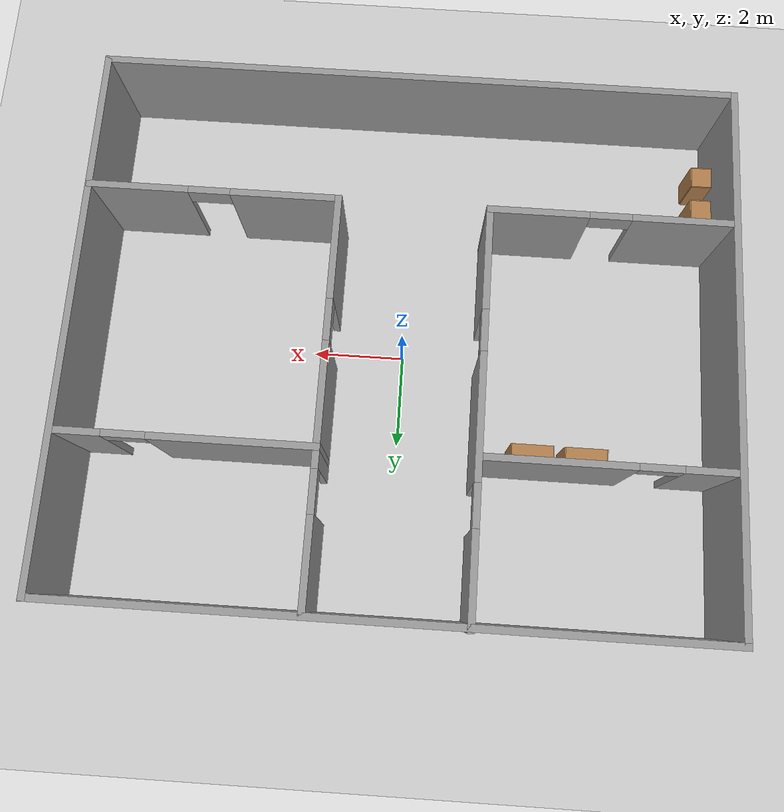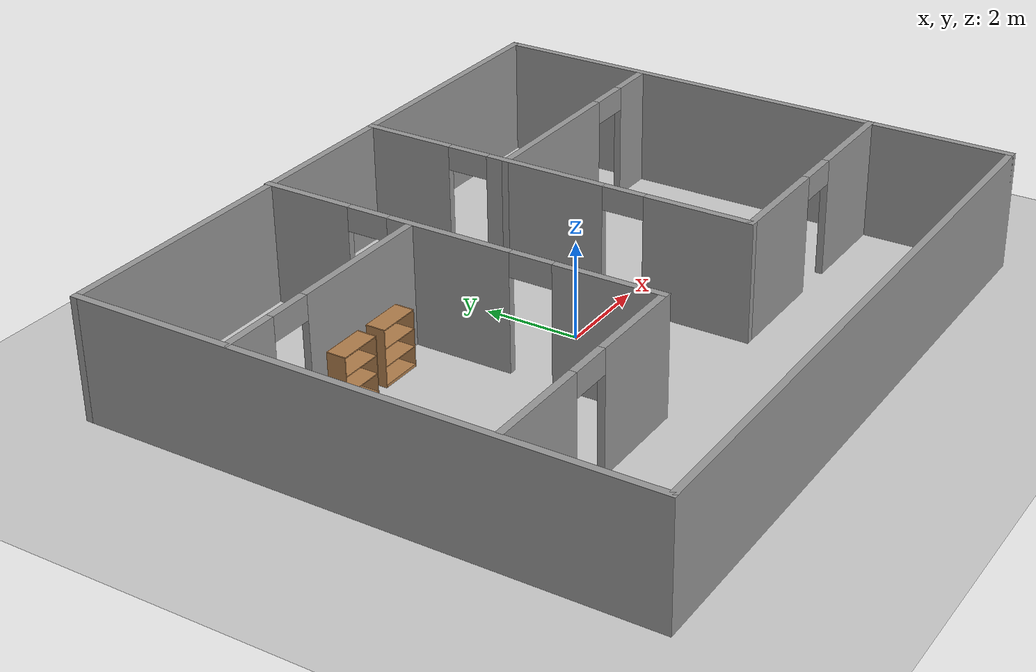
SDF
<sdf version="1.7">
 <world name="default">
  <light name="sun" type="directional">
   <pose>0 0 10 0 -0 0</pose>
   <diffuse>0.8 0.8 0.8 1</diffuse>
   <specular>0.2 0.2 0.2 1</specular>
   <attenuation>
    <range>1000</range>
    <constant>0.9</constant>
    <linear>0.01</linear>
    <quadratic>0.001</quadratic>
   </attenuation>
   <direction>-0.5 0.1 -0.9</direction>
   <spot><inner_angle>0</inner_angle><outer_angle>0</outer_angle><falloff>0</falloff></spot>
  </light>
  <model name="ground_plane">
   <static>1</static>
   <link name="link">
    <collision name="collision">
     <geometry><plane><normal>0 0 1</normal><size>100 100</size></plane></geometry>
     <surface><friction><ode><mu>100</mu><mu2>50</mu2></ode></friction></surface>
    </collision>
    <visual name="visual">
     <cast_shadows>0</cast_shadows>
     <geometry><plane><normal>0 0 1</normal><size>100 100</size></plane></geometry>
     <material>
      <script><uri>file://media/materials/scripts/gazebo.material</uri><name>Gazebo/Grey</name></script>
     </material>
    </visual>
   </link>
  </model>
  <gravity>0 0 -9.8</gravity>
  <magnetic_field>6e-06 2.3e-05 -4.2e-05</magnetic_field>
  <atmosphere type="adiabatic"/>
  <physics type="ode">
   <max_step_size>0.001</max_step_size>
   <real_time_factor>1</real_time_factor>
   <real_time_update_rate>1000</real_time_update_rate>
  </physics>
  <scene><ambient>0.4 0.4 0.4 1</ambient><background>0.7 0.7 0.7 1</background><shadows>1</shadows></scene>
  <audio><device>default</device></audio>
  <spherical_coordinates>
   <surface_model>EARTH_WGS84</surface_model>
   <latitude_deg>0</latitude_deg>
   <longitude_deg>0</longitude_deg>
   <elevation>0</elevation>
   <heading_deg>0</heading_deg>
  </spherical_coordinates>
  <model name="my_floor">
   <pose>-0.002745 -0.005069 0 0 -0 0</pose>
   <link name="Wall_0">
    <collision name="Wall_0_Collision">
     <geometry><box><size>11.75 0.15 2.5</size></box></geometry>
     <pose>0 0 1.25 0 -0 0</pose>
    </collision>
    <visual name="Wall_0_Visual">
     <pose>0 0 1.25 0 -0 0</pose>
     <geometry><box><size>11.75 0.15 2.5</size></box></geometry>
     <material>
      <script><uri>file://media/materials/scripts/gazebo.material</uri><name>Gazebo/Grey</name></script>
      <ambient>1 1 1 1</ambient>
     </material>
     <meta><layer>0</layer></meta>
    </visual>
    <pose>-6.925 -0.014588 0 0 -0 -1.5708</pose>
   </link>
   <link name="Wall_1">
    <collision name="Wall_1_Collision">
     <geometry><box><size>14 0.15 2.5</size></box></geometry>
     <pose>0 0 1.25 0 -0 0</pose>
    </collision>
    <visual name="Wall_1_Visual">
     <pose>0 0 1.25 0 -0 0</pose>
     <geometry><box><size>14 0.15 2.5</size></box></geometry>
     <material>
      <script><uri>file://media/materials/scripts/gazebo.material</uri><name>Gazebo/Grey</name></script>
      <ambient>1 1 1 1</ambient>
     </material>
     <meta><layer>0</layer></meta>
    </visual>
    <pose>0 -5.81459 0 0 -0 0</pose>
   </link>
   <link name="Wall_10">
    <pose>4.22991 -2.8151 0 0 -0 0</pose>
    <visual name="Wall_10_Visual_0">
     <pose>-1.54966 0 1.25 0 -0 0</pose>
     <geometry><box><size>2.40067 0.15 2.5</size></box></geometry>
     <material>
      <script><uri>file://media/materials/scripts/gazebo.material</uri><name>Gazebo/Grey</name></script>
      <ambient>1 1 1 1</ambient>
     </material>
     <meta><layer>0</layer></meta>
    </visual>
    <collision name="Wall_10_Collision_0">
     <geometry><box><size>2.40067 0.15 2.5</size></box></geometry>
     <pose>-1.54966 0 1.25 0 -0 0</pose>
    </collision>
    <visual name="Wall_10_Visual_1">
     <pose>1.65034 0 1.25 0 -0 0</pose>
     <geometry><box><size>2.19933 0.15 2.5</size></box></geometry>
     <material>
      <script><uri>file://media/materials/scripts/gazebo.material</uri><name>Gazebo/Grey</name></script>
      <ambient>1 1 1 1</ambient>
     </material>
     <meta><layer>0</layer></meta>
    </visual>
    <collision name="Wall_10_Collision_1">
     <geometry><box><size>2.19933 0.15 2.5</size></box></geometry>
     <pose>1.65034 0 1.25 0 -0 0</pose>
    </collision>
    <visual name="Wall_10_Visual_2">
     <pose>0.100673 0 2.25 0 -0 0</pose>
     <geometry><box><size>0.9 0.15 0.5</size></box></geometry>
     <material>
      <script><uri>file://media/materials/scripts/gazebo.material</uri><name>Gazebo/Grey</name></script>
      <ambient>1 1 1 1</ambient>
     </material>
     <meta><layer>0</layer></meta>
    </visual>
    <collision name="Wall_10_Collision_2">
     <geometry><box><size>0.9 0.15 0.5</size></box></geometry>
     <pose>0.100673 0 2.25 0 -0 0</pose>
    </collision>
   </link>
   <link name="Wall_12">
    <pose>4.22991 2.5265 0 0 -0 0</pose>
    <visual name="Wall_12_Visual_0">
     <pose>-0.99654 0 1.25 0 -0 0</pose>
     <geometry><box><size>3.50692 0.15 2.5</size></box></geometry>
     <material>
      <script><uri>file://media/materials/scripts/gazebo.material</uri><name>Gazebo/Grey</name></script>
      <ambient>1 1 1 1</ambient>
     </material>
     <meta><layer>0</layer></meta>
    </visual>
    <collision name="Wall_12_Collision_0">
     <geometry><box><size>3.50692 0.15 2.5</size></box></geometry>
     <pose>-0.99654 0 1.25 0 -0 0</pose>
    </collision>
    <visual name="Wall_12_Visual_1">
     <pose>2.20346 0 1.25 0 -0 0</pose>
     <geometry><box><size>1.09308 0.15 2.5</size></box></geometry>
     <material>
      <script><uri>file://media/materials/scripts/gazebo.material</uri><name>Gazebo/Grey</name></script>
      <ambient>1 1 1 1</ambient>
     </material>
     <meta><layer>0</layer></meta>
    </visual>
    <collision name="Wall_12_Collision_1">
     <geometry><box><size>1.09308 0.15 2.5</size></box></geometry>
     <pose>2.20346 0 1.25 0 -0 0</pose>
    </collision>
    <visual name="Wall_12_Visual_2">
     <pose>1.20692 0 2.25 0 -0 0</pose>
     <geometry><box><size>0.9 0.15 0.5</size></box></geometry>
     <material>
      <script><uri>file://media/materials/scripts/gazebo.material</uri><name>Gazebo/Grey</name></script>
      <ambient>1 1 1 1</ambient>
     </material>
     <meta><layer>0</layer></meta>
    </visual>
    <collision name="Wall_12_Collision_2">
     <geometry><box><size>0.9 0.15 0.5</size></box></geometry>
     <pose>1.20692 0 2.25 0 -0 0</pose>
    </collision>
   </link>
   <link name="Wall_14">
    <pose>-4.34279 2.50639 0 0 -0 0</pose>
    <visual name="Wall_14_Visual_0">
     <pose>-2.02807 0 1.25 0 -0 0</pose>
     <geometry><box><size>1.19386 0.15 2.5</size></box></geometry>
     <material>
      <script><uri>file://media/materials/scripts/gazebo.material</uri><name>Gazebo/Grey</name></script>
      <ambient>1 1 1 1</ambient>
     </material>
     <meta><layer>0</layer></meta>
    </visual>
    <collision name="Wall_14_Collision_0">
     <geometry><box><size>1.19386 0.15 2.5</size></box></geometry>
     <pose>-2.02807 0 1.25 0 -0 0</pose>
    </collision>
    <visual name="Wall_14_Visual_1">
     <pose>1.04693 0 1.25 0 -0 0</pose>
     <geometry><box><size>3.15614 0.15 2.5</size></box></geometry>
     <material>
      <script><uri>file://media/materials/scripts/gazebo.material</uri><name>Gazebo/Grey</name></script>
      <ambient>1 1 1 1</ambient>
     </material>
     <meta><layer>0</layer></meta>
    </visual>
    <collision name="Wall_14_Collision_1">
     <geometry><box><size>3.15614 0.15 2.5</size></box></geometry>
     <pose>1.04693 0 1.25 0 -0 0</pose>
    </collision>
    <visual name="Wall_14_Visual_2">
     <pose>-0.981142 0 2.25 0 -0 0</pose>
     <geometry><box><size>0.9 0.15 0.5</size></box></geometry>
     <material>
      <script><uri>file://media/materials/scripts/gazebo.material</uri><name>Gazebo/Grey</name></script>
      <ambient>1 1 1 1</ambient>
     </material>
     <meta><layer>0</layer></meta>
    </visual>
    <collision name="Wall_14_Collision_2">
     <geometry><box><size>0.9 0.15 0.5</size></box></geometry>
     <pose>-0.981142 0 2.25 0 -0 0</pose>
    </collision>
   </link>
   <link name="Wall_2">
    <collision name="Wall_2_Collision">
     <geometry><box><size>11.75 0.15 2.5</size></box></geometry>
     <pose>0 0 1.25 0 -0 0</pose>
    </collision>
    <visual name="Wall_2_Visual">
     <pose>0 0 1.25 0 -0 0</pose>
     <geometry><box><size>11.75 0.15 2.5</size></box></geometry>
     <material>
      <script><uri>file://media/materials/scripts/gazebo.material</uri><name>Gazebo/Grey</name></script>
      <ambient>1 1 1 1</ambient>
     </material>
     <meta><layer>0</layer></meta>
    </visual>
    <pose>6.925 -0.014588 0 0 -0 1.5708</pose>
   </link>
   <link name="Wall_3">
    <collision name="Wall_3_Collision">
     <geometry><box><size>14 0.15 2.5</size></box></geometry>
     <pose>0 0 1.25 0 -0 0</pose>
    </collision>
    <visual name="Wall_3_Visual">
     <pose>0 0 1.25 0 -0 0</pose>
     <geometry><box><size>14 0.15 2.5</size></box></geometry>
     <material>
      <script><uri>file://media/materials/scripts/gazebo.material</uri><name>Gazebo/Grey</name></script>
      <ambient>1 1 1 1</ambient>
     </material>
     <meta><layer>0</layer></meta>
    </visual>
    <pose>0 5.78541 0 0 -0 3.14159</pose>
   </link>
   <link name="Wall_5">
    <pose>-1.68683 1.51459 0 0 -0 -1.5708</pose>
    <visual name="Wall_5_Visual_0">
     <pose>-3.39113 0 1.25 0 -0 0</pose>
     <geometry><box><size>1.96775 0.15 2.5</size></box></geometry>
     <material>
      <script><uri>file://media/materials/scripts/gazebo.material</uri><name>Gazebo/Grey</name></script>
      <ambient>1 1 1 1</ambient>
     </material>
     <meta><layer>0</layer></meta>
    </visual>
    <collision name="Wall_5_Collision_0">
     <geometry><box><size>1.96775 0.15 2.5</size></box></geometry>
     <pose>-3.39113 0 1.25 0 -0 0</pose>
    </collision>
    <visual name="Wall_5_Visual_1">
     <pose>-0.167144 0 1.25 0 -0 0</pose>
     <geometry><box><size>2.68022 0.15 2.5</size></box></geometry>
     <material>
      <script><uri>file://media/materials/scripts/gazebo.material</uri><name>Gazebo/Grey</name></script>
      <ambient>1 1 1 1</ambient>
     </material>
     <meta><layer>0</layer></meta>
    </visual>
    <collision name="Wall_5_Collision_1">
     <geometry><box><size>2.68022 0.15 2.5</size></box></geometry>
     <pose>-0.167144 0 1.25 0 -0 0</pose>
    </collision>
    <visual name="Wall_5_Visual_2">
     <pose>3.22398 0 1.25 0 -0 0</pose>
     <geometry><box><size>2.30204 0.15 2.5</size></box></geometry>
     <material>
      <script><uri>file://media/materials/scripts/gazebo.material</uri><name>Gazebo/Grey</name></script>
      <ambient>1 1 1 1</ambient>
     </material>
     <meta><layer>0</layer></meta>
    </visual>
    <collision name="Wall_5_Collision_2">
     <geometry><box><size>2.30204 0.15 2.5</size></box></geometry>
     <pose>3.22398 0 1.25 0 -0 0</pose>
    </collision>
    <visual name="Wall_5_Visual_3">
     <pose>-1.95725 0 2.25 0 -0 0</pose>
     <geometry><box><size>0.9 0.15 0.5</size></box></geometry>
     <material>
      <script><uri>file://media/materials/scripts/gazebo.material</uri><name>Gazebo/Grey</name></script>
      <ambient>1 1 1 1</ambient>
     </material>
     <meta><layer>0</layer></meta>
    </visual>
    <collision name="Wall_5_Collision_3">
     <geometry><box><size>0.9 0.15 0.5</size></box></geometry>
     <pose>-1.95725 0 2.25 0 -0 0</pose>
    </collision>
    <visual name="Wall_5_Visual_4">
     <pose>1.62296 0 2.25 0 -0 0</pose>
     <geometry><box><size>0.9 0.15 0.5</size></box></geometry>
     <material>
      <script><uri>file://media/materials/scripts/gazebo.material</uri><name>Gazebo/Grey</name></script>
      <ambient>1 1 1 1</ambient>
     </material>
     <meta><layer>0</layer></meta>
    </visual>
    <collision name="Wall_5_Collision_4">
     <geometry><box><size>0.9 0.15 0.5</size></box></geometry>
     <pose>1.62296 0 2.25 0 -0 0</pose>
    </collision>
   </link>
   <link name="Wall_6">
    <pose>-4.23683 -2.78541 0 0 -0 3.14159</pose>
    <visual name="Wall_6_Visual_0">
     <pose>-1.52696 0 1.25 0 -0 0</pose>
     <geometry><box><size>2.19608 0.15 2.5</size></box></geometry>
     <material>
      <script><uri>file://media/materials/scripts/gazebo.material</uri><name>Gazebo/Grey</name></script>
      <ambient>1 1 1 1</ambient>
     </material>
     <meta><layer>0</layer></meta>
    </visual>
    <collision name="Wall_6_Collision_0">
     <geometry><box><size>2.19608 0.15 2.5</size></box></geometry>
     <pose>-1.52696 0 1.25 0 -0 0</pose>
    </collision>
    <visual name="Wall_6_Visual_1">
     <pose>1.54804 0 1.25 0 -0 0</pose>
     <geometry><box><size>2.15392 0.15 2.5</size></box></geometry>
     <material>
      <script><uri>file://media/materials/scripts/gazebo.material</uri><name>Gazebo/Grey</name></script>
      <ambient>1 1 1 1</ambient>
     </material>
     <meta><layer>0</layer></meta>
    </visual>
    <collision name="Wall_6_Collision_1">
     <geometry><box><size>2.15392 0.15 2.5</size></box></geometry>
     <pose>1.54804 0 1.25 0 -0 0</pose>
    </collision>
    <visual name="Wall_6_Visual_2">
     <pose>0.021079 0 2.25 0 -0 0</pose>
     <geometry><box><size>0.9 0.15 0.5</size></box></geometry>
     <material>
      <script><uri>file://media/materials/scripts/gazebo.material</uri><name>Gazebo/Grey</name></script>
      <ambient>1 1 1 1</ambient>
     </material>
     <meta><layer>0</layer></meta>
    </visual>
    <collision name="Wall_6_Collision_2">
     <geometry><box><size>0.9 0.15 0.5</size></box></geometry>
     <pose>0.021079 0 2.25 0 -0 0</pose>
    </collision>
   </link>
   <link name="Wall_8">
    <pose>1.55491 1.4849 0 0 -0 -1.5708</pose>
    <visual name="Wall_8_Visual_0">
     <pose>-3.3758 0 1.25 0 -0 0</pose>
     <geometry><box><size>1.9984 0.15 2.5</size></box></geometry>
     <material>
      <script><uri>file://media/materials/scripts/gazebo.material</uri><name>Gazebo/Grey</name></script>
      <ambient>1 1 1 1</ambient>
     </material>
     <meta><layer>0</layer></meta>
    </visual>
    <collision name="Wall_8_Collision_0">
     <geometry><box><size>1.9984 0.15 2.5</size></box></geometry>
     <pose>-3.3758 0 1.25 0 -0 0</pose>
    </collision>
    <visual name="Wall_8_Visual_1">
     <pose>-0.156604 0 1.25 0 -0 0</pose>
     <geometry><box><size>2.63999 0.15 2.5</size></box></geometry>
     <material>
      <script><uri>file://media/materials/scripts/gazebo.material</uri><name>Gazebo/Grey</name></script>
      <ambient>1 1 1 1</ambient>
     </material>
     <meta><layer>0</layer></meta>
    </visual>
    <collision name="Wall_8_Collision_1">
     <geometry><box><size>2.63999 0.15 2.5</size></box></geometry>
     <pose>-0.156604 0 1.25 0 -0 0</pose>
    </collision>
    <visual name="Wall_8_Visual_2">
     <pose>3.2192 0 1.25 0 -0 0</pose>
     <geometry><box><size>2.31161 0.15 2.5</size></box></geometry>
     <material>
      <script><uri>file://media/materials/scripts/gazebo.material</uri><name>Gazebo/Grey</name></script>
      <ambient>1 1 1 1</ambient>
     </material>
     <meta><layer>0</layer></meta>
    </visual>
    <collision name="Wall_8_Collision_2">
     <geometry><box><size>2.31161 0.15 2.5</size></box></geometry>
     <pose>3.2192 0 1.25 0 -0 0</pose>
    </collision>
    <visual name="Wall_8_Visual_3">
     <pose>-1.9266 0 2.25 0 -0 0</pose>
     <geometry><box><size>0.9 0.15 0.5</size></box></geometry>
     <material>
      <script><uri>file://media/materials/scripts/gazebo.material</uri><name>Gazebo/Grey</name></script>
      <ambient>1 1 1 1</ambient>
     </material>
     <meta><layer>0</layer></meta>
    </visual>
    <collision name="Wall_8_Collision_3">
     <geometry><box><size>0.9 0.15 0.5</size></box></geometry>
     <pose>-1.9266 0 2.25 0 -0 0</pose>
    </collision>
    <visual name="Wall_8_Visual_4">
     <pose>1.61339 0 2.25 0 -0 0</pose>
     <geometry><box><size>0.9 0.15 0.5</size></box></geometry>
     <material>
      <script><uri>file://media/materials/scripts/gazebo.material</uri><name>Gazebo/Grey</name></script>
      <ambient>1 1 1 1</ambient>
     </material>
     <meta><layer>0</layer></meta>
    </visual>
    <collision name="Wall_8_Collision_4">
     <geometry><box><size>0.9 0.15 0.5</size></box></geometry>
     <pose>1.61339 0 2.25 0 -0 0</pose>
    </collision>
   </link>
   <static>1</static>
  </model>
  <model name="bookshelf">
   <static>1</static>
   <link name="link">
    <inertial><mass>1</mass></inertial>
    <collision name="back">
     <pose>0 0.005 0.6 0 -0 0</pose>
     <geometry><box><size>0.9 0.01 1.2</size></box></geometry>
    </collision>
    <visual name="visual1">
     <pose>0 0.005 0.6 0 -0 0</pose>
     <geometry><box><size>0.9 0.01 1.2</size></box></geometry>
     <material>
      <script><uri>file://media/materials/scripts/gazebo.material</uri><name>Gazebo/Wood</name></script>
     </material>
    </visual>
    <collision name="left_side">
     <pose>0.45 -0.195 0.6 0 -0 0</pose>
     <geometry><box><size>0.02 0.4 1.2</size></box></geometry>
    </collision>
    <visual name="visual2">
     <pose>0.45 -0.195 0.6 0 -0 0</pose>
     <geometry><box><size>0.02 0.4 1.2</size></box></geometry>
     <material>
      <script><uri>file://media/materials/scripts/gazebo.material</uri><name>Gazebo/Wood</name></script>
     </material>
    </visual>
    <collision name="right_side">
     <pose>-0.45 -0.195 0.6 0 -0 0</pose>
     <geometry><box><size>0.02 0.4 1.2</size></box></geometry>
    </collision>
    <visual name="visual3">
     <pose>-0.45 -0.195 0.6 0 -0 0</pose>
     <geometry><box><size>0.02 0.4 1.2</size></box></geometry>
     <material>
      <script><uri>file://media/materials/scripts/gazebo.material</uri><name>Gazebo/Wood</name></script>
     </material>
    </visual>
    <collision name="bottom">
     <pose>0 -0.195 0.03 0 -0 0</pose>
     <geometry><box><size>0.88 0.4 0.06</size></box></geometry>
    </collision>
    <visual name="visual4">
     <pose>0 -0.195 0.03 0 -0 0</pose>
     <geometry><box><size>0.88 0.4 0.06</size></box></geometry>
     <material>
      <script><uri>file://media/materials/scripts/gazebo.material</uri><name>Gazebo/Wood</name></script>
     </material>
    </visual>
    <collision name="top">
     <pose>0 -0.195 1.19 0 -0 0</pose>
     <geometry><box><size>0.88 0.4 0.02</size></box></geometry>
    </collision>
    <visual name="visual5">
     <pose>0 -0.195 1.19 0 -0 0</pose>
     <geometry><box><size>0.88 0.4 0.02</size></box></geometry>
     <material>
      <script><uri>file://media/materials/scripts/gazebo.material</uri><name>Gazebo/Wood</name></script>
     </material>
    </visual>
    <collision name="low_shelf">
     <pose>0 -0.195 0.43 0 -0 0</pose>
     <geometry><box><size>0.88 0.4 0.02</size></box></geometry>
    </collision>
    <visual name="visual6">
     <pose>0 -0.195 0.43 0 -0 0</pose>
     <geometry><box><size>0.88 0.4 0.02</size></box></geometry>
     <material>
      <script><uri>file://media/materials/scripts/gazebo.material</uri><name>Gazebo/Wood</name></script>
     </material>
    </visual>
    <collision name="high_shelf">
     <pose>0 -0.195 0.8 0 -0 0</pose>
     <geometry><box><size>0.88 0.4 0.02</size></box></geometry>
    </collision>
    <visual name="visual7">
     <pose>0 -0.195 0.8 0 -0 0</pose>
     <geometry><box><size>0.88 0.4 0.02</size></box></geometry>
     <material>
      <script><uri>file://media/materials/scripts/gazebo.material</uri><name>Gazebo/Wood</name></script>
     </material>
    </visual>
   </link>
   <pose>-4.05091 2.37826 0 0 -0 0</pose>
  </model>
  <model name="bookshelf_0">
   <static>1</static>
   <link name="link">
    <inertial><mass>1</mass></inertial>
    <collision name="back">
     <pose>0 0.005 0.6 0 -0 0</pose>
     <geometry><box><size>0.9 0.01 1.2</size></box></geometry>
    </collision>
    <visual name="visual1">
     <pose>0 0.005 0.6 0 -0 0</pose>
     <geometry><box><size>0.9 0.01 1.2</size></box></geometry>
     <material>
      <script><uri>file://media/materials/scripts/gazebo.material</uri><name>Gazebo/Wood</name></script>
     </material>
    </visual>
    <collision name="left_side">
     <pose>0.45 -0.195 0.6 0 -0 0</pose>
     <geometry><box><size>0.02 0.4 1.2</size></box></geometry>
    </collision>
    <visual name="visual2">
     <pose>0.45 -0.195 0.6 0 -0 0</pose>
     <geometry><box><size>0.02 0.4 1.2</size></box></geometry>
     <material>
      <script><uri>file://media/materials/scripts/gazebo.material</uri><name>Gazebo/Wood</name></script>
     </material>
    </visual>
    <collision name="right_side">
     <pose>-0.45 -0.195 0.6 0 -0 0</pose>
     <geometry><box><size>0.02 0.4 1.2</size></box></geometry>
    </collision>
    <visual name="visual3">
     <pose>-0.45 -0.195 0.6 0 -0 0</pose>
     <geometry><box><size>0.02 0.4 1.2</size></box></geometry>
     <material>
      <script><uri>file://media/materials/scripts/gazebo.material</uri><name>Gazebo/Wood</name></script>
     </material>
    </visual>
    <collision name="bottom">
     <pose>0 -0.195 0.03 0 -0 0</pose>
     <geometry><box><size>0.88 0.4 0.06</size></box></geometry>
    </collision>
    <visual name="visual4">
     <pose>0 -0.195 0.03 0 -0 0</pose>
     <geometry><box><size>0.88 0.4 0.06</size></box></geometry>
     <material>
      <script><uri>file://media/materials/scripts/gazebo.material</uri><name>Gazebo/Wood</name></script>
     </material>
    </visual>
    <collision name="top">
     <pose>0 -0.195 1.19 0 -0 0</pose>
     <geometry><box><size>0.88 0.4 0.02</size></box></geometry>
    </collision>
    <visual name="visual5">
     <pose>0 -0.195 1.19 0 -0 0</pose>
     <geometry><box><size>0.88 0.4 0.02</size></box></geometry>
     <material>
      <script><uri>file://media/materials/scripts/gazebo.material</uri><name>Gazebo/Wood</name></script>
     </material>
    </visual>
    <collision name="low_shelf">
     <pose>0 -0.195 0.43 0 -0 0</pose>
     <geometry><box><size>0.88 0.4 0.02</size></box></geometry>
    </collision>
    <visual name="visual6">
     <pose>0 -0.195 0.43 0 -0 0</pose>
     <geometry><box><size>0.88 0.4 0.02</size></box></geometry>
     <material>
      <script><uri>file://media/materials/scripts/gazebo.material</uri><name>Gazebo/Wood</name></script>
     </material>
    </visual>
    <collision name="high_shelf">
     <pose>0 -0.195 0.8 0 -0 0</pose>
     <geometry><box><size>0.88 0.4 0.02</size></box></geometry>
    </collision>
    <visual name="visual7">
     <pose>0 -0.195 0.8 0 -0 0</pose>
     <geometry><box><size>0.88 0.4 0.02</size></box></geometry>
     <material>
      <script><uri>file://media/materials/scripts/gazebo.material</uri><name>Gazebo/Wood</name></script>
     </material>
    </visual>
   </link>
   <pose>-2.90535 2.37251 0 0 -0 0</pose>
  </model>
  <model name="cabinet">
   <static>1</static>
   <link name="cabinet_bottom_plate">
    <inertial>
     <pose>0 0 -1 0 -0 0</pose>
     <inertia><ixx>2.05</ixx><ixy>0</ixy><ixz>0</ixz><iyy>2.05</iyy><iyz>0</iyz><izz>2.05</izz></inertia>
     <mass>25</mass>
    </inertial>
    <collision name="cabinet_bottom_plate_geom">
     <pose>0 0 0.01 0 -0 0</pose>
     <geometry><box><size>0.45 0.45 0.02</size></box></geometry>
    </collision>
    <visual name="cabinet_bottom_plate_geom_visual">
     <pose>0 0 0.01 0 -0 0</pose>
     <geometry><box><size>0.45 0.45 0.02</size></box></geometry>
     <material>
      <script><uri>file://media/materials/scripts/gazebo.material</uri><name>Gazebo/Wood</name></script>
     </material>
    </visual>
    <collision name="cabinet_bottom_plate_geom_cabinet_back_plate">
     <pose>0.235 0 0.51 0 -0 0</pose>
     <geometry><box><size>0.02 0.45 1.02</size></box></geometry>
    </collision>
    <visual name="cabinet_bottom_plate_geom_cabinet_back_plate_visual">
     <pose>0.235 0 0.51 0 -0 0</pose>
     <geometry><box><size>0.02 0.45 1.02</size></box></geometry>
     <material>
      <script><uri>file://media/materials/scripts/gazebo.material</uri><name>Gazebo/Wood</name></script>
     </material>
    </visual>
    <collision name="cabinet_bottom_plate_geom_cabinet_left_plate">
     <pose>0 0.235 0.51 0 -0 0</pose>
     <geometry><box><size>0.45 0.02 1.02</size></box></geometry>
    </collision>
    <visual name="cabinet_bottom_plate_geom_cabinet_left_plate_visual">
     <pose>0 0.235 0.51 0 -0 0</pose>
     <geometry><box><size>0.45 0.02 1.02</size></box></geometry>
     <material>
      <script><uri>file://media/materials/scripts/gazebo.material</uri><name>Gazebo/Wood</name></script>
     </material>
    </visual>
    <collision name="cabinet_bottom_plate_geom_cabinet_middle_plate">
     <pose>0 0 0.51 0 -0 0</pose>
     <geometry><box><size>0.45 0.45 0.02</size></box></geometry>
    </collision>
    <visual name="cabinet_bottom_plate_geom_cabinet_middle_plate_visual">
     <pose>0 0 0.51 0 -0 0</pose>
     <geometry><box><size>0.45 0.45 0.02</size></box></geometry>
     <material>
      <script><uri>file://media/materials/scripts/gazebo.material</uri><name>Gazebo/Wood</name></script>
     </material>
    </visual>
    <collision name="cabinet_bottom_plate_geom_cabinet_right_plate">
     <pose>0 -0.235 0.51 0 -0 0</pose>
     <geometry><box><size>0.45 0.02 1.02</size></box></geometry>
    </collision>
    <visual name="cabinet_bottom_plate_geom_cabinet_right_plate_visual">
     <pose>0 -0.235 0.51 0 -0 0</pose>
     <geometry><box><size>0.45 0.02 1.02</size></box></geometry>
     <material>
      <script><uri>file://media/materials/scripts/gazebo.material</uri><name>Gazebo/Wood</name></script>
     </material>
    </visual>
    <collision name="cabinet_bottom_plate_geom_cabinet_top_plate">
     <pose>0 0 1.01 0 -0 0</pose>
     <geometry><box><size>0.45 0.45 0.02</size></box></geometry>
    </collision>
    <visual name="cabinet_bottom_plate_geom_cabinet_top_plate_visual">
     <pose>0 0 1.01 0 -0 0</pose>
     <geometry><box><size>0.45 0.45 0.02</size></box></geometry>
     <material>
      <script><uri>file://media/materials/scripts/gazebo.material</uri><name>Gazebo/Wood</name></script>
     </material>
    </visual>
   </link>
   <pose>-6.6026 -3.71566 0 0 -0 0</pose>
  </model>
  <model name="cabinet_0">
   <static>1</static>
   <link name="cabinet_bottom_plate">
    <inertial>
     <pose>0 0 -1 0 -0 0</pose>
     <inertia><ixx>2.05</ixx><ixy>0</ixy><ixz>0</ixz><iyy>2.05</iyy><iyz>0</iyz><izz>2.05</izz></inertia>
     <mass>25</mass>
    </inertial>
    <collision name="cabinet_bottom_plate_geom">
     <pose>0 0 0.01 0 -0 0</pose>
     <geometry><box><size>0.45 0.45 0.02</size></box></geometry>
    </collision>
    <visual name="cabinet_bottom_plate_geom_visual">
     <pose>0 0 0.01 0 -0 0</pose>
     <geometry><box><size>0.45 0.45 0.02</size></box></geometry>
     <material>
      <script><uri>file://media/materials/scripts/gazebo.material</uri><name>Gazebo/Wood</name></script>
     </material>
    </visual>
    <collision name="cabinet_bottom_plate_geom_cabinet_back_plate">
     <pose>0.235 0 0.51 0 -0 0</pose>
     <geometry><box><size>0.02 0.45 1.02</size></box></geometry>
    </collision>
    <visual name="cabinet_bottom_plate_geom_cabinet_back_plate_visual">
     <pose>0.235 0 0.51 0 -0 0</pose>
     <geometry><box><size>0.02 0.45 1.02</size></box></geometry>
     <material>
      <script><uri>file://media/materials/scripts/gazebo.material</uri><name>Gazebo/Wood</name></script>
     </material>
    </visual>
    <collision name="cabinet_bottom_plate_geom_cabinet_left_plate">
     <pose>0 0.235 0.51 0 -0 0</pose>
     <geometry><box><size>0.45 0.02 1.02</size></box></geometry>
    </collision>
    <visual name="cabinet_bottom_plate_geom_cabinet_left_plate_visual">
     <pose>0 0.235 0.51 0 -0 0</pose>
     <geometry><box><size>0.45 0.02 1.02</size></box></geometry>
     <material>
      <script><uri>file://media/materials/scripts/gazebo.material</uri><name>Gazebo/Wood</name></script>
     </material>
    </visual>
    <collision name="cabinet_bottom_plate_geom_cabinet_middle_plate">
     <pose>0 0 0.51 0 -0 0</pose>
     <geometry><box><size>0.45 0.45 0.02</size></box></geometry>
    </collision>
    <visual name="cabinet_bottom_plate_geom_cabinet_middle_plate_visual">
     <pose>0 0 0.51 0 -0 0</pose>
     <geometry><box><size>0.45 0.45 0.02</size></box></geometry>
     <material>
      <script><uri>file://media/materials/scripts/gazebo.material</uri><name>Gazebo/Wood</name></script>
     </material>
    </visual>
    <collision name="cabinet_bottom_plate_geom_cabinet_right_plate">
     <pose>0 -0.235 0.51 0 -0 0</pose>
     <geometry><box><size>0.45 0.02 1.02</size></box></geometry>
    </collision>
    <visual name="cabinet_bottom_plate_geom_cabinet_right_plate_visual">
     <pose>0 -0.235 0.51 0 -0 0</pose>
     <geometry><box><size>0.45 0.02 1.02</size></box></geometry>
     <material>
      <script><uri>file://media/materials/scripts/gazebo.material</uri><name>Gazebo/Wood</name></script>
     </material>
    </visual>
    <collision name="cabinet_bottom_plate_geom_cabinet_top_plate">
     <pose>0 0 1.01 0 -0 0</pose>
     <geometry><box><size>0.45 0.45 0.02</size></box></geometry>
    </collision>
    <visual name="cabinet_bottom_plate_geom_cabinet_top_plate_visual">
     <pose>0 0 1.01 0 -0 0</pose>
     <geometry><box><size>0.45 0.45 0.02</size></box></geometry>
     <material>
      <script><uri>file://media/materials/scripts/gazebo.material</uri><name>Gazebo/Wood</name></script>
     </material>
    </visual>
   </link>
   <pose>-6.62644 -4.52234 0 0 -0 0</pose>
  </model>
 </world>
</sdf>
